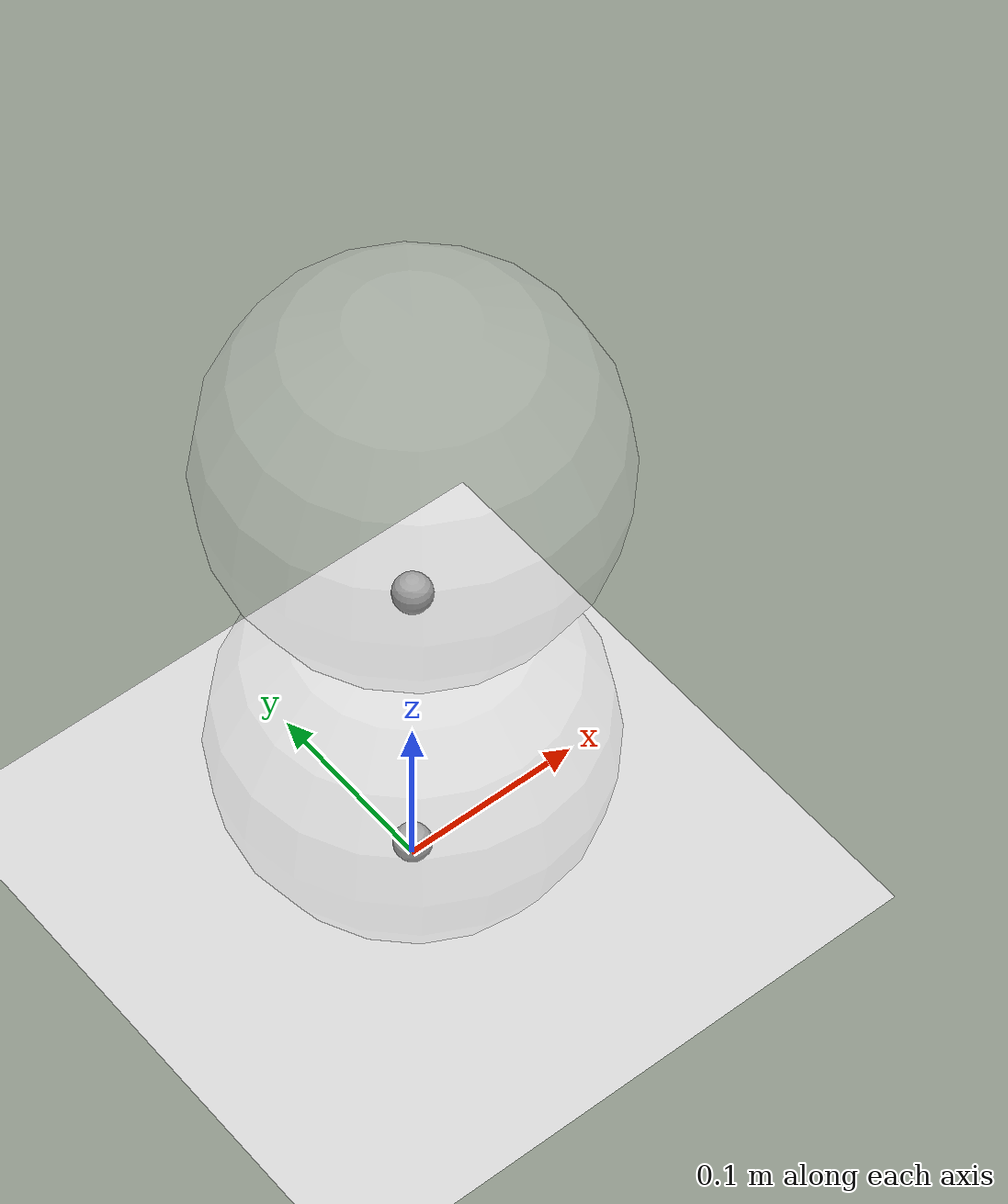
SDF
<sdf version="1.6">
 <world name="default">
  <light name="sun" type="directional">
   <pose>0 0 10 0 -0 0</pose>
   <diffuse>0.8 0.8 0.8 1</diffuse>
   <specular>0.1 0.1 0.1 1</specular>
   <attenuation>
    <range>1000</range>
    <constant>0.9</constant>
    <linear>0.01</linear>
    <quadratic>0.001</quadratic>
   </attenuation>
   <direction>-0.5 0.5 -1</direction>
  </light>
  <model name="ground_plane">
   <static>1</static>
   <link name="link">
    <collision name="collision">
     <geometry><plane><normal>0 0 1</normal><size>100 100</size></plane></geometry>
     <surface><friction><ode><mu>0.9</mu><mu2>0.9</mu2></ode></friction></surface>
    </collision>
    <visual name="visual">
     <cast_shadows>0</cast_shadows>
     <geometry><plane><normal>0 0 1</normal><size>100 100</size></plane></geometry>
     <material>
      <script><uri>file://media/materials/scripts/gazebo.material</uri><name>Gazebo/Grey</name></script>
     </material>
    </visual>
   </link>
  </model>
  <gravity>0 0 -9.8</gravity>
  <magnetic_field>6e-06 2.3e-05 -4.2e-05</magnetic_field>
  <atmosphere type="adiabatic"/>
  <physics name="default_physics" default="0" type="ode">
   <max_step_size>0.001</max_step_size>
   <real_time_factor>1</real_time_factor>
   <real_time_update_rate>1000</real_time_update_rate>
  </physics>
  <scene><ambient>0.4 0.4 0.4 1</ambient><background>0.7 0.7 0.7 1</background><shadows>1</shadows></scene>
  <spherical_coordinates>
   <surface_model>EARTH_WGS84</surface_model>
   <latitude_deg>0</latitude_deg>
   <longitude_deg>0</longitude_deg>
   <elevation>0</elevation>
   <heading_deg>0</heading_deg>
  </spherical_coordinates>
  <model name="sphere_0">
   <link name="link">
    <inertial>
     <mass>0.1</mass>
     <inertia>
      <ixx>0.0452389</ixx>
      <iyy>0.0452389</iyy>
      <izz>0.0452389</izz>
      <ixy>0</ixy>
      <ixz>0</ixz>
      <iyz>0</iyz>
     </inertia>
    </inertial>
    <visual name="visual">
     <geometry><sphere><radius>0.1</radius></sphere></geometry>
     <material>
      <script><uri>file://media/materials/scripts/gazebo.material</uri><name>Gazebo/CoM</name></script>
      <ambient>0.5 0.5 0.5 1</ambient>
      <diffuse>1 1 1 1</diffuse>
      <specular>0 0 0 1</specular>
      <emissive>0 0 0 1</emissive>
      <shader type="vertex"><normal_map>__default__</normal_map></shader>
     </material>
     <transparency>0.8</transparency>
    </visual>
    <collision name="collision">
     <max_contacts>20</max_contacts>
     <geometry><sphere><radius>0.1</radius></sphere></geometry>
     <surface>
      <friction>
       <ode><mu>0.9</mu><mu2>0.9</mu2><fdir1>0 0 0</fdir1><slip1>0</slip1><slip2>0</slip2></ode>
       <torsional>
        <coefficient>0.9</coefficient>
        <patch_radius>2</patch_radius>
        <surface_radius>0</surface_radius>
        <use_patch_radius>1</use_patch_radius>
        <ode><slip>0</slip></ode>
       </torsional>
      </friction>
      <bounce><restitution_coefficient>0</restitution_coefficient><threshold>1e+06</threshold></bounce>
      <contact>
       <collide_without_contact>0</collide_without_contact>
       <collide_without_contact_bitmask>1</collide_without_contact_bitmask>
       <collide_bitmask>1</collide_bitmask>
       <ode>
        <soft_cfm>0</soft_cfm>
        <soft_erp>0.2</soft_erp>
        <kp>500000</kp>
        <kd>1</kd>
        <max_vel>0.01</max_vel>
        <min_depth>0</min_depth>
       </ode>
       <bullet>
        <split_impulse>1</split_impulse>
        <split_impulse_penetration_threshold>-0.01</split_impulse_penetration_threshold>
        <soft_cfm>0</soft_cfm>
        <soft_erp>0.2</soft_erp>
        <kp>500000</kp>
        <kd>1</kd>
       </bullet>
      </contact>
     </surface>
    </collision>
   </link>
   <link name="link_0">
    <pose>-0 0 -0.09 0 -0 0</pose>
    <inertial>
     <mass>0.5</mass>
     <inertia>
      <ixx>0.0452389</ixx>
      <iyy>0.0452389</iyy>
      <izz>0.0452389</izz>
      <ixy>0</ixy>
      <ixz>0</ixz>
      <iyz>0</iyz>
     </inertia>
    </inertial>
    <visual name="visual">
     <geometry><sphere><radius>0.01</radius></sphere></geometry>
     <material>
      <lighting>1</lighting>
      <script><uri>file://media/materials/scripts/gazebo.material</uri><name>Gazebo/Grey</name></script>
      <ambient>0.3 0.3 0.3 1</ambient>
      <diffuse>0.7 0.7 0.7 1</diffuse>
      <specular>0.01 0.01 0.01 1</specular>
      <emissive>0 0 0 1</emissive>
      <shader type="vertex"><normal_map>__default__</normal_map></shader>
     </material>
    </visual>
    <collision name="collision">
     <geometry><sphere><radius>0.01</radius></sphere></geometry>
     <surface>
      <friction>
       <ode><mu>0.9</mu><mu2>0.9</mu2><fdir1>0 0 0</fdir1><slip1>0</slip1><slip2>0</slip2></ode>
       <torsional>
        <coefficient>0.9</coefficient>
        <patch_radius>2</patch_radius>
        <surface_radius>0</surface_radius>
        <use_patch_radius>1</use_patch_radius>
        <ode><slip>0</slip></ode>
       </torsional>
      </friction>
      <bounce><restitution_coefficient>0</restitution_coefficient><threshold>1e+06</threshold></bounce>
      <contact>
       <collide_without_contact>0</collide_without_contact>
       <collide_without_contact_bitmask>1</collide_without_contact_bitmask>
       <collide_bitmask>1</collide_bitmask>
       <ode>
        <soft_cfm>0</soft_cfm>
        <soft_erp>0.2</soft_erp>
        <kp>1e+13</kp>
        <kd>1</kd>
        <max_vel>0.01</max_vel>
        <min_depth>0</min_depth>
       </ode>
       <bullet>
        <split_impulse>1</split_impulse>
        <split_impulse_penetration_threshold>-0.01</split_impulse_penetration_threshold>
        <soft_cfm>0</soft_cfm>
        <soft_erp>0.2</soft_erp>
        <kp>1e+13</kp>
        <kd>1</kd>
       </bullet>
      </contact>
     </surface>
    </collision>
   </link>
   <joint name="link_0_JOINT_z" type="revolute">
    <parent>link_0</parent>
    <child>link</child>
    <axis>
     <xyz>0 0 1</xyz>
     <use_parent_model_frame>0</use_parent_model_frame>
     <limit>
      <lower>-1.79769e+308</lower>
      <upper>1.79769e+308</upper>
      <effort>-1</effort>
      <velocity>-1</velocity>
     </limit>
     <dynamics>
      <spring_reference>0</spring_reference>
      <spring_stiffness>0</spring_stiffness>
      <damping>0</damping>
      <friction>0</friction>
     </dynamics>
    </axis>
    <physics>
     <ode><limit><cfm>0</cfm><erp>0.2</erp></limit><suspension><cfm>0</cfm><erp>0.2</erp></suspension></ode>
    </physics>
   </joint>
   <joint name="link_0_JOINT_y" type="revolute">
    <parent>link_0</parent>
    <child>link</child>
    <axis>
     <xyz>0 1 0</xyz>
     <use_parent_model_frame>0</use_parent_model_frame>
     <limit>
      <lower>-1.79769e+308</lower>
      <upper>1.79769e+308</upper>
      <effort>-1</effort>
      <velocity>-1</velocity>
     </limit>
     <dynamics>
      <spring_reference>0</spring_reference>
      <spring_stiffness>0</spring_stiffness>
      <damping>0</damping>
     </dynamics>
    </axis>
    <physics>
     <ode><limit><cfm>0</cfm><erp>0.2</erp></limit><suspension><cfm>0</cfm><erp>0.2</erp></suspension></ode>
    </physics>
   </joint>
   <static>0</static>
   <allow_auto_disable>0</allow_auto_disable>
   <pose>0 0 0.098903 0 -0 0</pose>
   <plugin name="magnet" filename="libmagnet.so"/>
  </model>
  <model name="sphere_1">
   <link name="link">
    <inertial>
     <mass>0.1</mass>
     <inertia>
      <ixx>0.0452389</ixx>
      <iyy>0.0452389</iyy>
      <izz>0.0452389</izz>
      <ixy>0</ixy>
      <ixz>0</ixz>
      <iyz>0</iyz>
     </inertia>
    </inertial>
    <visual name="visual">
     <geometry><sphere><radius>0.1</radius></sphere></geometry>
     <material>
      <script><uri>file://media/materials/scripts/gazebo.material</uri><name>Gazebo/CoM</name></script>
      <ambient>0.5 0.5 0.5 1</ambient>
      <diffuse>1 1 1 1</diffuse>
      <specular>0 0 0 1</specular>
      <emissive>0 0 0 1</emissive>
      <shader type="vertex"><normal_map>__default__</normal_map></shader>
     </material>
     <transparency>0.8</transparency>
    </visual>
    <collision name="collision">
     <max_contacts>20</max_contacts>
     <geometry><sphere><radius>0.1</radius></sphere></geometry>
     <surface>
      <friction>
       <ode><mu>0.9</mu><mu2>0.9</mu2><fdir1>0 0 0</fdir1><slip1>0</slip1><slip2>0</slip2></ode>
       <torsional>
        <coefficient>0.9</coefficient>
        <patch_radius>2</patch_radius>
        <surface_radius>0</surface_radius>
        <use_patch_radius>1</use_patch_radius>
        <ode><slip>0</slip></ode>
       </torsional>
      </friction>
      <bounce><restitution_coefficient>0</restitution_coefficient><threshold>1e+06</threshold></bounce>
      <contact>
       <collide_without_contact>0</collide_without_contact>
       <collide_without_contact_bitmask>1</collide_without_contact_bitmask>
       <collide_bitmask>1</collide_bitmask>
       <ode>
        <soft_cfm>0</soft_cfm>
        <soft_erp>0.2</soft_erp>
        <kp>500000</kp>
        <kd>1</kd>
        <max_vel>0.01</max_vel>
        <min_depth>0</min_depth>
       </ode>
       <bullet>
        <split_impulse>1</split_impulse>
        <split_impulse_penetration_threshold>-0.01</split_impulse_penetration_threshold>
        <soft_cfm>0</soft_cfm>
        <soft_erp>0.2</soft_erp>
        <kp>500000</kp>
        <kd>1</kd>
       </bullet>
      </contact>
     </surface>
    </collision>
   </link>
   <link name="link_0">
    <pose>-0 0 -0.09 0 -0 0</pose>
    <inertial>
     <mass>0.5</mass>
     <inertia>
      <ixx>0.0452389</ixx>
      <iyy>0.0452389</iyy>
      <izz>0.0452389</izz>
      <ixy>0</ixy>
      <ixz>0</ixz>
      <iyz>0</iyz>
     </inertia>
    </inertial>
    <visual name="visual">
     <geometry><sphere><radius>0.01</radius></sphere></geometry>
     <material>
      <lighting>1</lighting>
      <script><uri>file://media/materials/scripts/gazebo.material</uri><name>Gazebo/Grey</name></script>
      <ambient>0.3 0.3 0.3 1</ambient>
      <diffuse>0.7 0.7 0.7 1</diffuse>
      <specular>0.01 0.01 0.01 1</specular>
      <emissive>0 0 0 1</emissive>
      <shader type="vertex"><normal_map>__default__</normal_map></shader>
     </material>
    </visual>
    <collision name="collision">
     <geometry><sphere><radius>0.012</radius></sphere></geometry>
     <surface>
      <friction>
       <ode><mu>20</mu><mu2>20</mu2><fdir1>0 0 0</fdir1><slip1>0</slip1><slip2>0</slip2></ode>
       <torsional>
        <coefficient>20</coefficient>
        <patch_radius>0.1</patch_radius>
        <surface_radius>0</surface_radius>
        <use_patch_radius>1</use_patch_radius>
        <ode><slip>0</slip></ode>
       </torsional>
      </friction>
      <bounce><restitution_coefficient>0</restitution_coefficient><threshold>1e+06</threshold></bounce>
      <contact>
       <collide_without_contact>0</collide_without_contact>
       <collide_without_contact_bitmask>1</collide_without_contact_bitmask>
       <collide_bitmask>1</collide_bitmask>
       <ode>
        <soft_cfm>0</soft_cfm>
        <soft_erp>0.2</soft_erp>
        <kp>1e+13</kp>
        <kd>1</kd>
        <max_vel>0.01</max_vel>
        <min_depth>0</min_depth>
       </ode>
       <bullet>
        <split_impulse>1</split_impulse>
        <split_impulse_penetration_threshold>-0.01</split_impulse_penetration_threshold>
        <soft_cfm>0</soft_cfm>
        <soft_erp>0.2</soft_erp>
        <kp>1e+13</kp>
        <kd>1</kd>
       </bullet>
      </contact>
     </surface>
    </collision>
   </link>
   <joint name="link_0_JOINT_z" type="revolute">
    <parent>link_0</parent>
    <child>link</child>
    <axis>
     <xyz>0 0 1</xyz>
     <use_parent_model_frame>0</use_parent_model_frame>
     <limit>
      <lower>-1.79769e+308</lower>
      <upper>1.79769e+308</upper>
      <effort>-1</effort>
      <velocity>-1</velocity>
     </limit>
     <dynamics>
      <spring_reference>0</spring_reference>
      <spring_stiffness>0</spring_stiffness>
      <damping>0</damping>
      <friction>0</friction>
     </dynamics>
    </axis>
    <physics>
     <ode><limit><cfm>0</cfm><erp>0.2</erp></limit><suspension><cfm>0</cfm><erp>0.2</erp></suspension></ode>
    </physics>
   </joint>
   <joint name="link_0_JOINT_y" type="revolute">
    <parent>link_0</parent>
    <child>link</child>
    <axis>
     <xyz>0 1 0</xyz>
     <use_parent_model_frame>0</use_parent_model_frame>
     <limit>
      <lower>-1.79769e+308</lower>
      <upper>1.79769e+308</upper>
      <effort>-1</effort>
      <velocity>-1</velocity>
     </limit>
     <dynamics>
      <spring_reference>0</spring_reference>
      <spring_stiffness>0</spring_stiffness>
      <damping>0</damping>
     </dynamics>
    </axis>
    <physics>
     <ode><limit><cfm>0</cfm><erp>0.2</erp></limit><suspension><cfm>0</cfm><erp>0.2</erp></suspension></ode>
    </physics>
   </joint>
   <static>0</static>
   <allow_auto_disable>0</allow_auto_disable>
   <pose>0 0 0.296773 0 -0 0</pose>
   <plugin name="magnet" filename="libmagnet.so"/>
  </model>
 </world>
</sdf>
